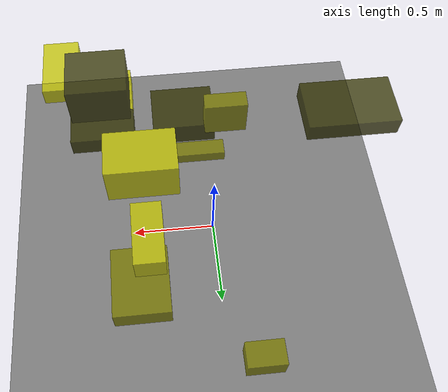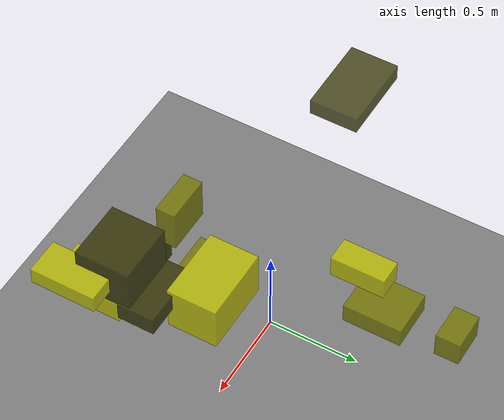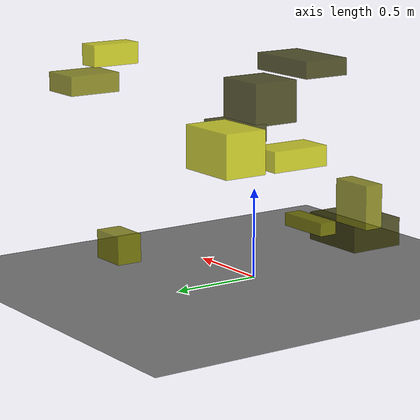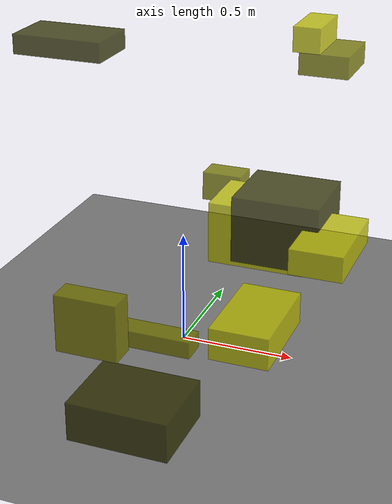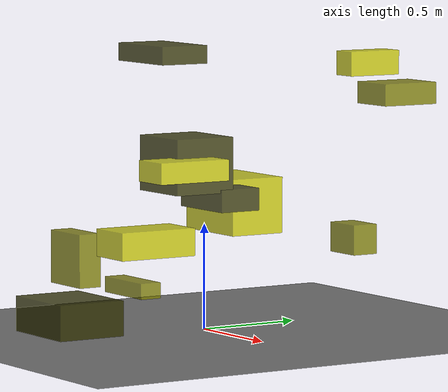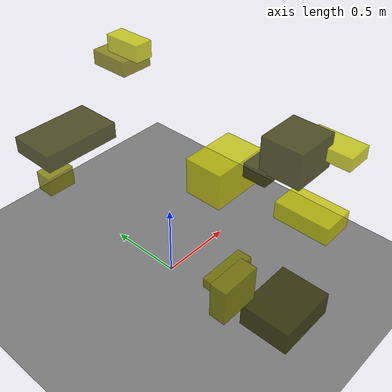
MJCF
<?xml version="1.0"?>
<mujoco model="obstacle_scene">
  <compiler angle="radian" coordinate="local"/>
  <option timestep="0.001" gravity="0 0 -9.81"/>

  <asset>
    <material name="obstacle_mat" rgba="0.8 0.8 0.0 0.8"/>
    <material name="ground_mat" rgba="0.5 0.5 0.5 1"/>
  </asset>

  <worldbody>
    <!-- Ground plane -->
    <geom name="ground" type="plane" size="3 3 0.1" material="ground_mat"/>

    <!-- Obstacles -->
    <body name="obstacle_0" pos="-0.575341 0.123320 1.271753">
      <geom name="obs_0" type="box" size="0.204853 0.126269 0.043708" rgba="0.2 0.2 0.0 0.8"/>
    </body>
    <body name="obstacle_1" pos="0.407427 0.820370 1.115032">
      <geom name="obs_1" type="box" size="0.116561 0.145370 0.051456" rgba="0.5 0.5 0.0 0.8"/>
    </body>
    <body name="obstacle_2" pos="0.359940 0.685380 1.260264">
      <geom name="obs_2" type="box" size="0.062598 0.135125 0.057253" rgba="0.8 0.8 0.0 0.8"/>
    </body>
    <body name="obstacle_3" pos="0.598944 -0.473235 0.862718">
      <geom name="obs_3" type="box" size="0.161510 0.145886 0.125361" rgba="0.2 0.2 0.0 0.8"/>
    </body>
    <body name="obstacle_4" pos="-0.153697 0.961544 0.356659">
      <geom name="obs_4" type="box" size="0.101877 0.066694 0.073010" rgba="0.5 0.5 0.0 0.8"/>
    </body>
    <body name="obstacle_5" pos="0.399070 -0.088728 0.644283">
      <geom name="obs_5" type="box" size="0.199564 0.134323 0.128845" rgba="0.8 0.8 0.0 0.8"/>
    </body>
    <body name="obstacle_6" pos="0.123079 -0.809243 0.138452">
      <geom name="obs_6" type="box" size="0.205280 0.165461 0.081403" rgba="0.2 0.2 0.0 0.8"/>
    </body>
    <body name="obstacle_7" pos="-0.140663 -0.622029 0.364329">
      <geom name="obs_7" type="box" size="0.133542 0.055373 0.124528" rgba="0.5 0.5 0.0 0.8"/>
    </body>
    <body name="obstacle_8" pos="0.799785 -0.609929 0.856118">
      <geom name="obs_8" type="box" size="0.096348 0.175259 0.047270" rgba="0.8 0.8 0.0 0.8"/>
    </body>
    <body name="obstacle_9" pos="0.596701 -0.293206 0.700764">
      <geom name="obs_9" type="box" size="0.173430 0.099056 0.050881" rgba="0.2 0.2 0.0 0.8"/>
    </body>
    <body name="obstacle_10" pos="0.052749 -0.428618 0.235631">
      <geom name="obs_10" type="box" size="0.164696 0.052176 0.036517" rgba="0.5 0.5 0.0 0.8"/>
    </body>
    <body name="obstacle_11" pos="0.550601 -0.657013 0.512784">
      <geom name="obs_11" type="box" size="0.113251 0.190190 0.062380" rgba="0.8 0.8 0.0 0.8"/>
    </body>
  </worldbody>
</mujoco>
